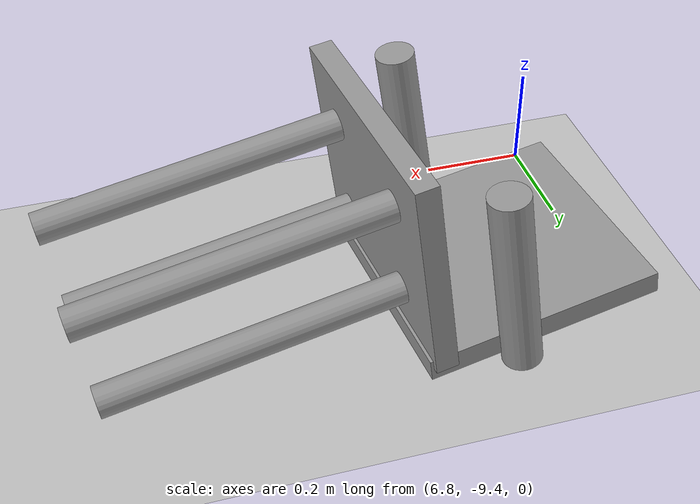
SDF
<sdf version="1.6">
 <world name="default">
  <model name="ground_plane">
   <static>1</static>
   <link name="link">
    <collision name="collision">
     <geometry><plane><normal>0 0 1</normal><size>100 100</size></plane></geometry>
     <surface>
      <contact><collide_bitmask>65535</collide_bitmask></contact>
      <friction><ode><mu>100</mu><mu2>50</mu2></ode></friction>
     </surface>
    </collision>
    <visual name="visual">
     <cast_shadows>0</cast_shadows>
     <geometry><plane><normal>0 0 1</normal><size>100 100</size></plane></geometry>
     <material>
      <script><uri>file://media/materials/scripts/gazebo.material</uri><name>Gazebo/Grey</name></script>
     </material>
    </visual>
   </link>
  </model>
  <model name="chair_clone_clone">
   <link name="link_4">
    <inertial>
     <mass>0.00194051</mass>
     <inertia>
      <ixx>5.14044e-05</ixx>
      <ixy>0</ixy>
      <ixz>0</ixz>
      <iyy>5.14044e-05</iyy>
      <iyz>0</iyz>
      <izz>8.34973e-07</izz>
     </inertia>
    </inertial>
    <pose>-0.140129 -0.127166 -0.209129 0 -0 0</pose>
    <visual name="visual">
     <geometry><cylinder><radius>0.0293355</radius><length>0.561516</length></cylinder></geometry>
     <material>
      <lighting>1</lighting>
      <script><uri>file://media/materials/scripts/gazebo.material</uri><name>Gazebo/Grey</name></script>
      <emissive>0 0 0 1</emissive>
     </material>
    </visual>
    <collision name="collision">
     <geometry><cylinder><radius>0.029336</radius><length>0.561516</length></cylinder></geometry>
     <surface>
      <friction>
       <ode><mu>1</mu><mu2>1</mu2><fdir1>0 0 0</fdir1><slip1>0</slip1><slip2>0</slip2></ode>
       <torsional>
        <coefficient>1</coefficient>
        <patch_radius>0</patch_radius>
        <surface_radius>0</surface_radius>
        <use_patch_radius>1</use_patch_radius>
        <ode><slip>0</slip></ode>
       </torsional>
      </friction>
      <bounce><restitution_coefficient>0</restitution_coefficient><threshold>1e+06</threshold></bounce>
      <contact>
       <collide_without_contact>0</collide_without_contact>
       <collide_without_contact_bitmask>1</collide_without_contact_bitmask>
       <collide_bitmask>1</collide_bitmask>
       <ode>
        <soft_cfm>0</soft_cfm>
        <soft_erp>0.2</soft_erp>
        <kp>1e+13</kp>
        <kd>1</kd>
        <max_vel>0.01</max_vel>
        <min_depth>0</min_depth>
       </ode>
       <bullet>
        <split_impulse>1</split_impulse>
        <split_impulse_penetration_threshold>-0.01</split_impulse_penetration_threshold>
        <soft_cfm>0</soft_cfm>
        <soft_erp>0.2</soft_erp>
        <kp>1e+13</kp>
        <kd>1</kd>
       </bullet>
      </contact>
     </surface>
    </collision>
   </link>
   <link name="link_4_clone">
    <inertial>
     <mass>0.00194051</mass>
     <inertia>
      <ixx>5.14044e-05</ixx>
      <ixy>0</ixy>
      <ixz>0</ixz>
      <iyy>5.14044e-05</iyy>
      <iyz>0</iyz>
      <izz>8.34973e-07</izz>
     </inertia>
    </inertial>
    <pose>-0.139565 0.126187 -0.209129 0 -0 0</pose>
    <visual name="visual">
     <geometry><cylinder><radius>0.0293355</radius><length>0.561516</length></cylinder></geometry>
     <material>
      <lighting>1</lighting>
      <script><uri>file://media/materials/scripts/gazebo.material</uri><name>Gazebo/Grey</name></script>
      <shader type="pixel"/>
      <emissive>0 0 0 1</emissive>
     </material>
    </visual>
    <collision name="collision">
     <geometry><cylinder><radius>0.029336</radius><length>0.561516</length></cylinder></geometry>
     <surface>
      <friction>
       <ode><mu>1</mu><mu2>1</mu2><fdir1>0 0 0</fdir1><slip1>0</slip1><slip2>0</slip2></ode>
       <torsional>
        <coefficient>1</coefficient>
        <patch_radius>0</patch_radius>
        <surface_radius>0</surface_radius>
        <use_patch_radius>1</use_patch_radius>
        <ode><slip>0</slip></ode>
       </torsional>
      </friction>
      <bounce><restitution_coefficient>0</restitution_coefficient><threshold>1e+06</threshold></bounce>
      <contact>
       <collide_without_contact>0</collide_without_contact>
       <collide_without_contact_bitmask>1</collide_without_contact_bitmask>
       <collide_bitmask>1</collide_bitmask>
       <ode>
        <soft_cfm>0</soft_cfm>
        <soft_erp>0.2</soft_erp>
        <kp>1e+13</kp>
        <kd>1</kd>
        <max_vel>0.01</max_vel>
        <min_depth>0</min_depth>
       </ode>
       <bullet>
        <split_impulse>1</split_impulse>
        <split_impulse_penetration_threshold>-0.01</split_impulse_penetration_threshold>
        <soft_cfm>0</soft_cfm>
        <soft_erp>0.2</soft_erp>
        <kp>1e+13</kp>
        <kd>1</kd>
       </bullet>
      </contact>
     </surface>
    </collision>
   </link>
   <link name="link_4_clone_0">
    <inertial>
     <mass>0.00194051</mass>
     <inertia>
      <ixx>5.14044e-05</ixx>
      <ixy>0</ixy>
      <ixz>0</ixz>
      <iyy>5.14044e-05</iyy>
      <iyz>0</iyz>
      <izz>8.34973e-07</izz>
     </inertia>
    </inertial>
    <pose>0.062929 0.13105 -0.209129 0 -0 0</pose>
    <visual name="visual">
     <geometry><cylinder><radius>0.0293355</radius><length>0.561516</length></cylinder></geometry>
     <material>
      <lighting>1</lighting>
      <script><uri>file://media/materials/scripts/gazebo.material</uri><name>Gazebo/Grey</name></script>
      <shader type="pixel"/>
      <emissive>0 0 0 1</emissive>
     </material>
    </visual>
    <collision name="collision">
     <geometry><cylinder><radius>0.029336</radius><length>0.561516</length></cylinder></geometry>
     <surface>
      <friction>
       <ode><mu>1</mu><mu2>1</mu2><fdir1>0 0 0</fdir1><slip1>0</slip1><slip2>0</slip2></ode>
       <torsional>
        <coefficient>1</coefficient>
        <patch_radius>0</patch_radius>
        <surface_radius>0</surface_radius>
        <use_patch_radius>1</use_patch_radius>
        <ode><slip>0</slip></ode>
       </torsional>
      </friction>
      <bounce><restitution_coefficient>0</restitution_coefficient><threshold>1e+06</threshold></bounce>
      <contact>
       <collide_without_contact>0</collide_without_contact>
       <collide_without_contact_bitmask>1</collide_without_contact_bitmask>
       <collide_bitmask>1</collide_bitmask>
       <ode>
        <soft_cfm>0</soft_cfm>
        <soft_erp>0.2</soft_erp>
        <kp>1e+13</kp>
        <kd>1</kd>
        <max_vel>0.01</max_vel>
        <min_depth>0</min_depth>
       </ode>
       <bullet>
        <split_impulse>1</split_impulse>
        <split_impulse_penetration_threshold>-0.01</split_impulse_penetration_threshold>
        <soft_cfm>0</soft_cfm>
        <soft_erp>0.2</soft_erp>
        <kp>1e+13</kp>
        <kd>1</kd>
       </bullet>
      </contact>
     </surface>
    </collision>
   </link>
   <link name="link_4_clone_1">
    <inertial>
     <mass>0.00194051</mass>
     <inertia>
      <ixx>5.14044e-05</ixx>
      <ixy>0</ixy>
      <ixz>0</ixz>
      <iyy>5.14044e-05</iyy>
      <iyz>0</iyz>
      <izz>8.34973e-07</izz>
     </inertia>
    </inertial>
    <pose>0.061641 -0.111934 -0.209129 0 -0 0</pose>
    <visual name="visual">
     <geometry><cylinder><radius>0.0293355</radius><length>0.561516</length></cylinder></geometry>
     <material>
      <lighting>1</lighting>
      <script><uri>file://media/materials/scripts/gazebo.material</uri><name>Gazebo/Grey</name></script>
      <shader type="pixel"/>
      <emissive>0 0 0 1</emissive>
     </material>
    </visual>
    <collision name="collision">
     <geometry><cylinder><radius>0.029336</radius><length>0.561516</length></cylinder></geometry>
     <surface>
      <friction>
       <ode><mu>1</mu><mu2>1</mu2><fdir1>0 0 0</fdir1><slip1>0</slip1><slip2>0</slip2></ode>
       <torsional>
        <coefficient>1</coefficient>
        <patch_radius>0</patch_radius>
        <surface_radius>0</surface_radius>
        <use_patch_radius>1</use_patch_radius>
        <ode><slip>0</slip></ode>
       </torsional>
      </friction>
      <bounce><restitution_coefficient>0</restitution_coefficient><threshold>1e+06</threshold></bounce>
      <contact>
       <collide_without_contact>0</collide_without_contact>
       <collide_without_contact_bitmask>1</collide_without_contact_bitmask>
       <collide_bitmask>1</collide_bitmask>
       <ode>
        <soft_cfm>0</soft_cfm>
        <soft_erp>0.2</soft_erp>
        <kp>1e+13</kp>
        <kd>1</kd>
        <max_vel>0.01</max_vel>
        <min_depth>0</min_depth>
       </ode>
       <bullet>
        <split_impulse>1</split_impulse>
        <split_impulse_penetration_threshold>-0.01</split_impulse_penetration_threshold>
        <soft_cfm>0</soft_cfm>
        <soft_erp>0.2</soft_erp>
        <kp>1e+13</kp>
        <kd>1</kd>
       </bullet>
      </contact>
     </surface>
    </collision>
   </link>
   <link name="link_5">
    <inertial>
     <mass>0.00816884</mass>
     <inertia>
      <ixx>0.00015002</ixx>
      <ixy>0</ixy>
      <ixz>0</ixz>
      <iyy>0.000115328</iyy>
      <iyz>0</iyz>
      <izz>0.000262862</izz>
     </inertia>
    </inertial>
    <pose>-0.041662 -0.005028 0.089077 0 -0 0</pose>
    <visual name="visual">
     <geometry><box><size>0.409378 0.467496 0.042729</size></box></geometry>
     <material>
      <lighting>1</lighting>
      <script><uri>file://media/materials/scripts/gazebo.material</uri><name>Gazebo/Grey</name></script>
      <emissive>0 0 0 1</emissive>
     </material>
    </visual>
    <collision name="collision">
     <geometry><box><size>0.409378 0.467496 0.042729</size></box></geometry>
     <surface>
      <friction>
       <ode><mu>1</mu><mu2>1</mu2><fdir1>0 0 0</fdir1><slip1>0</slip1><slip2>0</slip2></ode>
       <torsional>
        <coefficient>1</coefficient>
        <patch_radius>0</patch_radius>
        <surface_radius>0</surface_radius>
        <use_patch_radius>1</use_patch_radius>
        <ode><slip>0</slip></ode>
       </torsional>
      </friction>
      <bounce><restitution_coefficient>0</restitution_coefficient><threshold>1e+06</threshold></bounce>
      <contact>
       <collide_without_contact>0</collide_without_contact>
       <collide_without_contact_bitmask>1</collide_without_contact_bitmask>
       <collide_bitmask>1</collide_bitmask>
       <ode>
        <soft_cfm>0</soft_cfm>
        <soft_erp>0.2</soft_erp>
        <kp>1e+13</kp>
        <kd>1</kd>
        <max_vel>0.01</max_vel>
        <min_depth>0</min_depth>
       </ode>
       <bullet>
        <split_impulse>1</split_impulse>
        <split_impulse_penetration_threshold>-0.01</split_impulse_penetration_threshold>
        <soft_cfm>0</soft_cfm>
        <soft_erp>0.2</soft_erp>
        <kp>1e+13</kp>
        <kd>1</kd>
       </bullet>
      </contact>
     </surface>
    </collision>
   </link>
   <link name="link_6">
    <inertial>
     <mass>0.00855687</mass>
     <inertia>
      <ixx>0.000285159</ixx>
      <ixy>0</ixy>
      <ixz>0</ixz>
      <iyy>0.000146983</iyy>
      <iyz>0</iyz>
      <izz>0.000140925</izz>
     </inertia>
    </inertial>
    <pose>0.165697 -0.006458 0.287866 0 -0 0</pose>
    <visual name="visual">
     <geometry><box><size>0.0439 0.442383 0.451884</size></box></geometry>
     <material>
      <lighting>1</lighting>
      <script><uri>file://media/materials/scripts/gazebo.material</uri><name>Gazebo/Grey</name></script>
      <emissive>0 0 0 1</emissive>
     </material>
    </visual>
    <collision name="collision">
     <geometry><box><size>0.0439 0.442383 0.451884</size></box></geometry>
     <surface>
      <friction>
       <ode><mu>1</mu><mu2>1</mu2><fdir1>0 0 0</fdir1><slip1>0</slip1><slip2>0</slip2></ode>
       <torsional>
        <coefficient>1</coefficient>
        <patch_radius>0</patch_radius>
        <surface_radius>0</surface_radius>
        <use_patch_radius>1</use_patch_radius>
        <ode><slip>0</slip></ode>
       </torsional>
      </friction>
      <bounce><restitution_coefficient>0</restitution_coefficient><threshold>1e+06</threshold></bounce>
      <contact>
       <collide_without_contact>0</collide_without_contact>
       <collide_without_contact_bitmask>1</collide_without_contact_bitmask>
       <collide_bitmask>1</collide_bitmask>
       <ode>
        <soft_cfm>0</soft_cfm>
        <soft_erp>0.2</soft_erp>
        <kp>1e+13</kp>
        <kd>1</kd>
        <max_vel>0.01</max_vel>
        <min_depth>0</min_depth>
       </ode>
       <bullet>
        <split_impulse>1</split_impulse>
        <split_impulse_penetration_threshold>-0.01</split_impulse_penetration_threshold>
        <soft_cfm>0</soft_cfm>
        <soft_erp>0.2</soft_erp>
        <kp>1e+13</kp>
        <kd>1</kd>
       </bullet>
      </contact>
     </surface>
    </collision>
   </link>
   <link name="link_7">
    <inertial>
     <mass>0.00209129</mass>
     <inertia>
      <ixx>2.57536e-05</ixx>
      <ixy>0</ixy>
      <ixz>0</ixz>
      <iyy>2.57536e-05</iyy>
      <iyz>0</iyz>
      <izz>1.44551e-06</izz>
     </inertia>
    </inertial>
    <pose>0.0147 0.228665 0.230372 0 1.55081 0</pose>
    <visual name="visual">
     <geometry><cylinder><radius>0.0371808</radius><length>0.378984</length></cylinder></geometry>
     <material>
      <lighting>1</lighting>
      <script><uri>file://media/materials/scripts/gazebo.material</uri><name>Gazebo/Grey</name></script>
      <emissive>0 0 0 1</emissive>
     </material>
    </visual>
    <collision name="collision">
     <geometry><cylinder><radius>0.037181</radius><length>0.378984</length></cylinder></geometry>
     <surface>
      <friction>
       <ode><mu>1</mu><mu2>1</mu2><fdir1>0 0 0</fdir1><slip1>0</slip1><slip2>0</slip2></ode>
       <torsional>
        <coefficient>1</coefficient>
        <patch_radius>0</patch_radius>
        <surface_radius>0</surface_radius>
        <use_patch_radius>1</use_patch_radius>
        <ode><slip>0</slip></ode>
       </torsional>
      </friction>
      <bounce><restitution_coefficient>0</restitution_coefficient><threshold>1e+06</threshold></bounce>
      <contact>
       <collide_without_contact>0</collide_without_contact>
       <collide_without_contact_bitmask>1</collide_without_contact_bitmask>
       <collide_bitmask>1</collide_bitmask>
       <ode>
        <soft_cfm>0</soft_cfm>
        <soft_erp>0.2</soft_erp>
        <kp>1e+13</kp>
        <kd>1</kd>
        <max_vel>0.01</max_vel>
        <min_depth>0</min_depth>
       </ode>
       <bullet>
        <split_impulse>1</split_impulse>
        <split_impulse_penetration_threshold>-0.01</split_impulse_penetration_threshold>
        <soft_cfm>0</soft_cfm>
        <soft_erp>0.2</soft_erp>
        <kp>1e+13</kp>
        <kd>1</kd>
       </bullet>
      </contact>
     </surface>
    </collision>
   </link>
   <link name="link_7_clone">
    <inertial>
     <mass>0.00209129</mass>
     <inertia>
      <ixx>2.57536e-05</ixx>
      <ixy>0</ixy>
      <ixz>0</ixz>
      <iyy>2.57536e-05</iyy>
      <iyz>0</iyz>
      <izz>1.44551e-06</izz>
     </inertia>
    </inertial>
    <pose>0.01639 -0.235319 0.229201 0 1.55081 0</pose>
    <visual name="visual">
     <geometry><cylinder><radius>0.0371808</radius><length>0.378984</length></cylinder></geometry>
     <material>
      <lighting>1</lighting>
      <script><uri>file://media/materials/scripts/gazebo.material</uri><name>Gazebo/Grey</name></script>
      <shader type="pixel"/>
      <emissive>0 0 0 1</emissive>
     </material>
    </visual>
    <collision name="collision">
     <geometry><cylinder><radius>0.037181</radius><length>0.378984</length></cylinder></geometry>
     <surface>
      <friction>
       <ode><mu>1</mu><mu2>1</mu2><fdir1>0 0 0</fdir1><slip1>0</slip1><slip2>0</slip2></ode>
       <torsional>
        <coefficient>1</coefficient>
        <patch_radius>0</patch_radius>
        <surface_radius>0</surface_radius>
        <use_patch_radius>1</use_patch_radius>
        <ode><slip>0</slip></ode>
       </torsional>
      </friction>
      <bounce><restitution_coefficient>0</restitution_coefficient><threshold>1e+06</threshold></bounce>
      <contact>
       <collide_without_contact>0</collide_without_contact>
       <collide_without_contact_bitmask>1</collide_without_contact_bitmask>
       <collide_bitmask>1</collide_bitmask>
       <ode>
        <soft_cfm>0</soft_cfm>
        <soft_erp>0.2</soft_erp>
        <kp>1e+13</kp>
        <kd>1</kd>
        <max_vel>0.01</max_vel>
        <min_depth>0</min_depth>
       </ode>
       <bullet>
        <split_impulse>1</split_impulse>
        <split_impulse_penetration_threshold>-0.01</split_impulse_penetration_threshold>
        <soft_cfm>0</soft_cfm>
        <soft_erp>0.2</soft_erp>
        <kp>1e+13</kp>
        <kd>1</kd>
       </bullet>
      </contact>
     </surface>
    </collision>
   </link>
   <joint name="link_5_JOINT_2" type="fixed">
    <parent>link_5</parent>
    <child>link_4_clone_1</child>
    <physics>
     <ode><limit><cfm>0</cfm><erp>0.2</erp></limit><suspension><cfm>0</cfm><erp>0.2</erp></suspension></ode>
    </physics>
   </joint>
   <joint name="link_5_JOINT_3" type="fixed">
    <parent>link_5</parent>
    <child>link_4</child>
    <physics>
     <ode><limit><cfm>0</cfm><erp>0.2</erp></limit><suspension><cfm>0</cfm><erp>0.2</erp></suspension></ode>
    </physics>
   </joint>
   <joint name="link_5_JOINT_4" type="fixed">
    <parent>link_5</parent>
    <child>link_4_clone_0</child>
    <physics>
     <ode><limit><cfm>0</cfm><erp>0.2</erp></limit><suspension><cfm>0</cfm><erp>0.2</erp></suspension></ode>
    </physics>
   </joint>
   <joint name="link_5_JOINT_5" type="fixed">
    <parent>link_5</parent>
    <child>link_4_clone</child>
    <physics>
     <ode><limit><cfm>0</cfm><erp>0.2</erp></limit><suspension><cfm>0</cfm><erp>0.2</erp></suspension></ode>
    </physics>
   </joint>
   <joint name="link_5_JOINT_6" type="fixed">
    <parent>link_5</parent>
    <child>link_6</child>
    <physics>
     <ode><limit><cfm>0</cfm><erp>0.2</erp></limit><suspension><cfm>0</cfm><erp>0.2</erp></suspension></ode>
    </physics>
   </joint>
   <joint name="link_5_JOINT_7" type="fixed">
    <parent>link_5</parent>
    <child>link_7</child>
    <physics>
     <ode><limit><cfm>0</cfm><erp>0.2</erp></limit><suspension><cfm>0</cfm><erp>0.2</erp></suspension></ode>
    </physics>
   </joint>
   <joint name="link_5_JOINT_8" type="fixed">
    <parent>link_5</parent>
    <child>link_7_clone</child>
    <physics>
     <ode><limit><cfm>0</cfm><erp>0.2</erp></limit><suspension><cfm>0</cfm><erp>0.2</erp></suspension></ode>
    </physics>
   </joint>
   <static>0</static>
   <pose>7.30176 -9.03438 0.177806 -0.010416 1.43487 -3.05804</pose>
  </model>
 </world>
</sdf>
